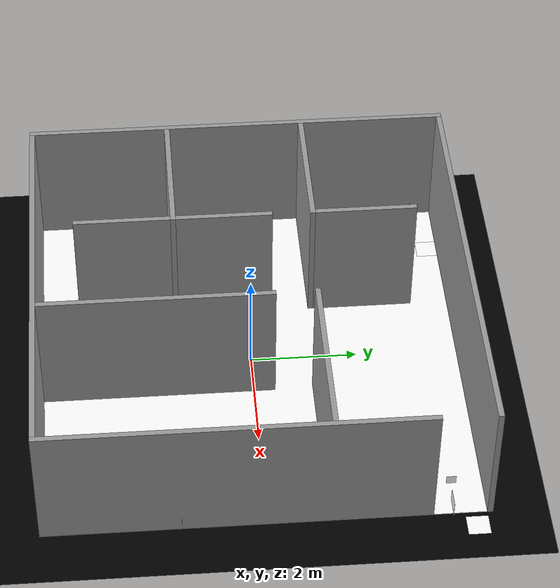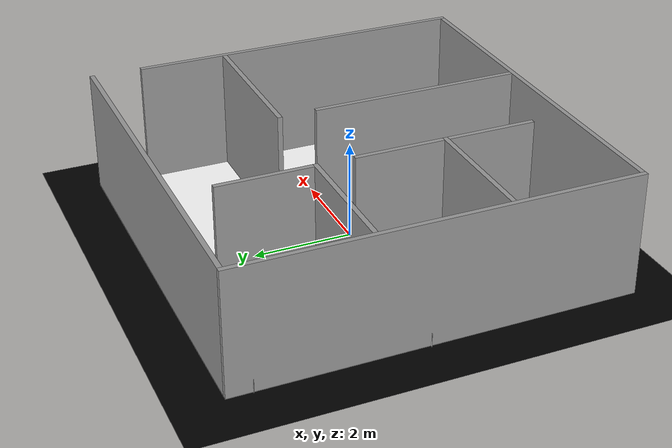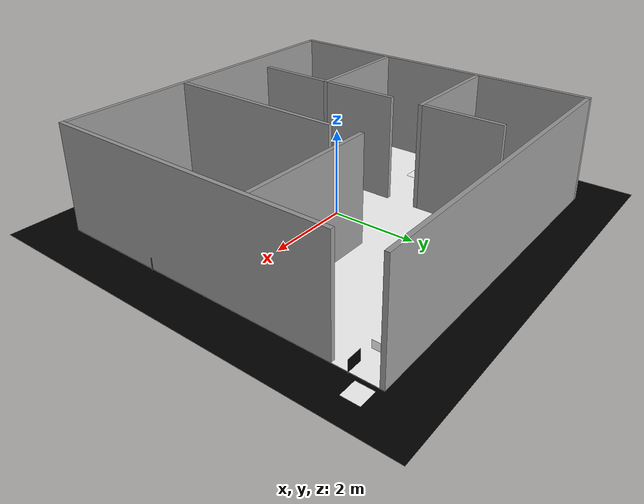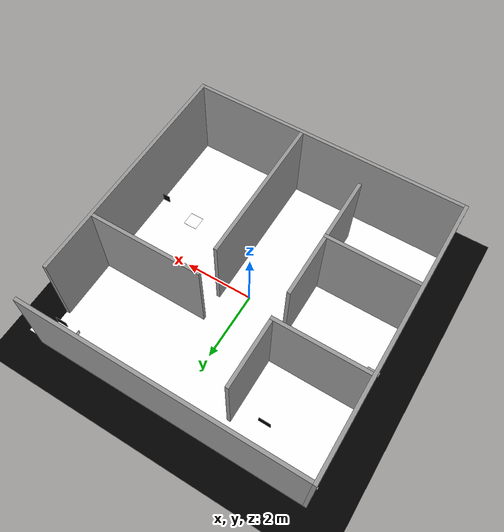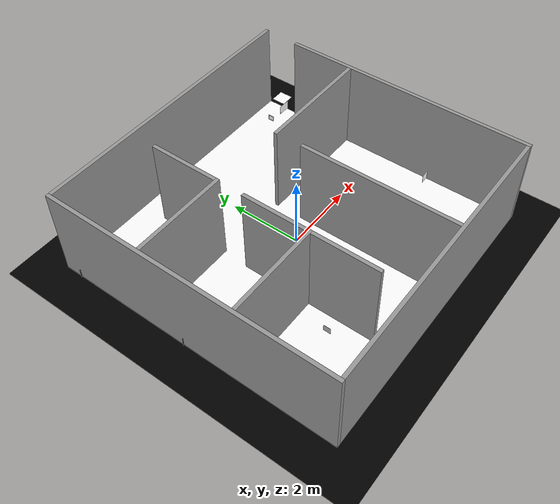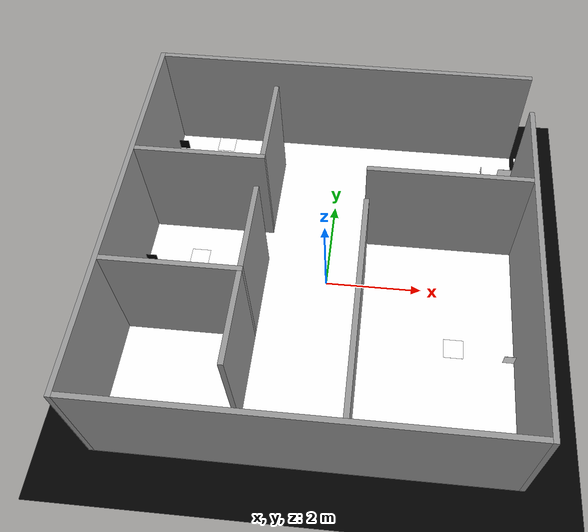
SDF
<sdf version="1.4">
  <world name="puzzlebot_office_course">

      <physics name="1ms" type="ignored">
      <max_step_size>0.001</max_step_size>
      <real_time_factor>1.0</real_time_factor>
    </physics>
    <plugin
      filename="gz-sim-physics-system"
      name="gz::sim::systems::Physics">
    </plugin>
    <plugin
      filename="gz-sim-user-commands-system"
      name="gz::sim::systems::UserCommands">
    </plugin>
    <plugin
      filename="gz-sim-scene-broadcaster-system"
      name="gz::sim::systems::SceneBroadcaster">
    </plugin>

    <plugin
        filename="gz-sim-sensors-system"
        name="gz::sim::systems::Sensors">
        <render_engine>ogre2</render_engine>
    </plugin>

    <scene>
      <ambient>0.4 0.4 0.4 1</ambient>
      <background>0.7 0.7 0.7 1</background>
      <shadows>false</shadows>
    </scene>

    <!-- Arena lights -->
    <include>
    <name>light1</name>
      <uri>model://simple_light</uri>
      <pose>2 2 10 0 0 0</pose>
    </include>

    <include>
    <name>light2</name>
      <uri>model://simple_light</uri>
      <pose>-2 2 10 0 0 0</pose>
    </include>

    <include>
    <name>light3</name>
      <uri>model://simple_light</uri>
      <pose>-2 -2 10 0 0 0</pose>
    </include>

    <include>
    <name>light4</name>
      <uri>model://simple_light</uri>
      <pose>2 -2 10 0 0 0</pose>
    </include>

    <include>
      <uri>model://office_floor</uri>
    </include>

    <include>
      <uri>model://office_model</uri>
    </include>

    <include>
      <name>goal_marker_0</name>
      <uri>model://goal_marker_5</uri>
      <pose>2.7 -1.3 0.01 0 0 0</pose>
    </include>

    <include>
      <name>goal_marker_1</name>
      <uri>model://goal_marker_5</uri>
      <pose>-2.8 0.4 0.01 0 0 0</pose>
    </include>

    <include>
      <name>goal_marker_2</name>
      <uri>model://goal_marker_5</uri>
      <pose>-2.8 3.7 0.01 0 0 0</pose>
    </include>

    <include>
      <name>goal_marker_3</name>
      <uri>model://goal_marker_5</uri>
      <pose>4.3 3.7 0.01 0 0 0</pose>
    </include>

    <include>
      <name>marker_0</name>
      <uri>model://aruco_marker_0</uri>
      <pose>-1.80 -2.20 0.091 0 0 3.141592654</pose>
    </include>

    <include>
      <name>marker_1</name>
      <uri>model://aruco_marker_1</uri>
      <pose>3.85 -1.50 0.091 0 0 3.141592654</pose>
    </include>

    <include>
      <name>marker_2</name>
      <uri>model://aruco_marker_2</uri>
      <pose>-3.85 0.20 0.091 0 0 0</pose>
    </include>

    <include>
      <name>marker_3</name>
      <uri>model://aruco_marker_3</uri>
      <pose>-3.85 3.50 0.091 0 0 0</pose>
    </include>

    <include>
      <name>marker_4</name>
      <uri>model://aruco_marker_4</uri>
      <pose>3.85 3.30 0.091 0 0 3.141592654</pose>
    </include>

    <include>
      <name>marker_5</name>
      <uri>model://aruco_marker_5</uri>
      <pose>-2.15 2.80 0.091 0 0 3.141592</pose>
    </include>

    <include>
      <name>marker_6</name>
      <uri>model://aruco_marker_6</uri>
      <pose>3.30 3.35 0.091 0 0 3.141592</pose>
    </include>

    <gui fullscreen='0'>
      <camera name='user_camera'>
        <pose>-8.0 -8.0 10.0 0 0.785 0.785</pose>
        <view_controller>orbit</view_controller>
      </camera>
    </gui>

  </world>
</sdf>
